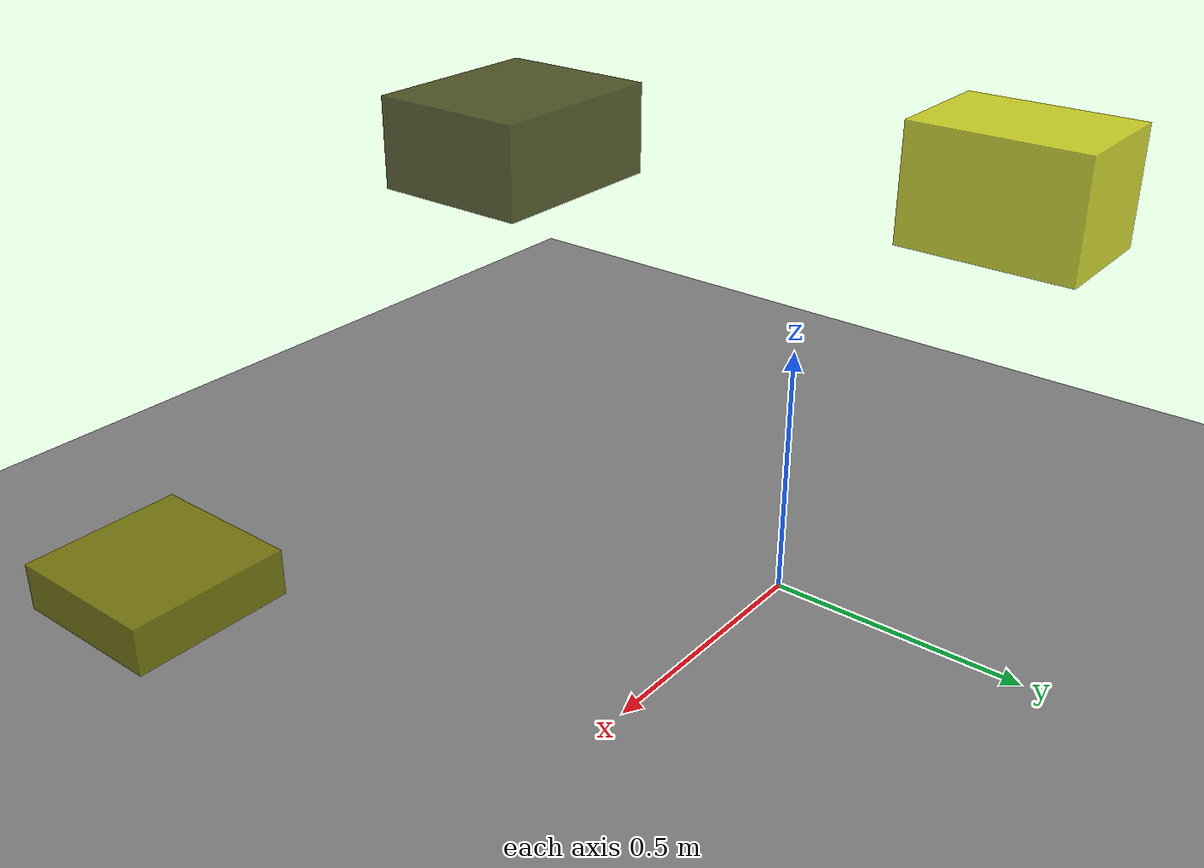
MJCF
<?xml version="1.0"?>
<mujoco model="obstacle_scene">
  <compiler angle="radian" coordinate="local"/>
  <option timestep="0.001" gravity="0 0 -9.81"/>

  <asset>
    <material name="obstacle_mat" rgba="0.8 0.8 0.0 0.8"/>
    <material name="ground_mat" rgba="0.5 0.5 0.5 1"/>
  </asset>

  <worldbody>
    <!-- Ground plane -->
    <geom name="ground" type="plane" size="3 3 0.1" material="ground_mat"/>

    <!-- Obstacles -->
    <body name="obstacle_0" pos="0.609825 -0.116623 1.018782">
      <geom name="obs_0" type="box" size="0.138231 0.116098 0.065399" rgba="0.2 0.2 0.0 0.8"/>
    </body>
    <body name="obstacle_1" pos="0.852677 -0.791300 0.128062">
      <geom name="obs_1" type="box" size="0.158181 0.159425 0.046832" rgba="0.5 0.5 0.0 0.8"/>
    </body>
    <body name="obstacle_2" pos="-0.427751 0.204514 0.746446">
      <geom name="obs_2" type="box" size="0.131204 0.179053 0.121226" rgba="0.8 0.8 0.0 0.8"/>
    </body>
  </worldbody>
</mujoco>
